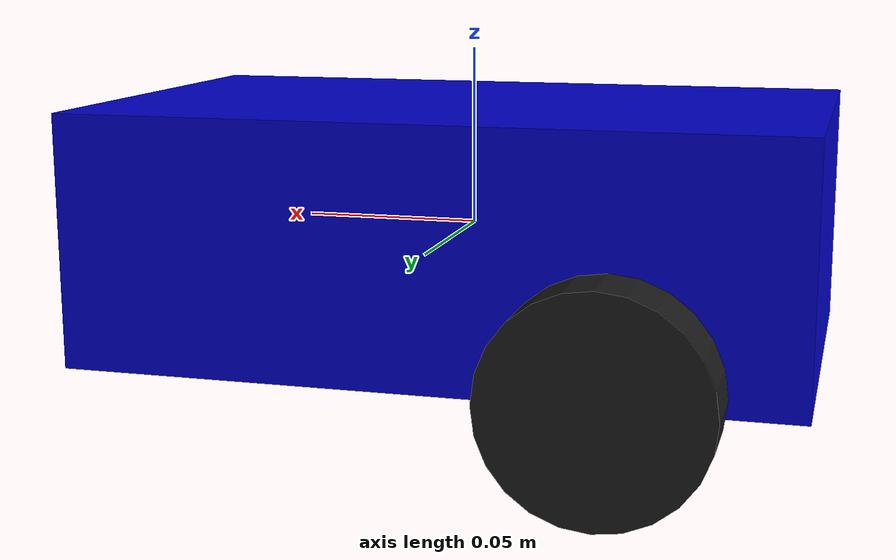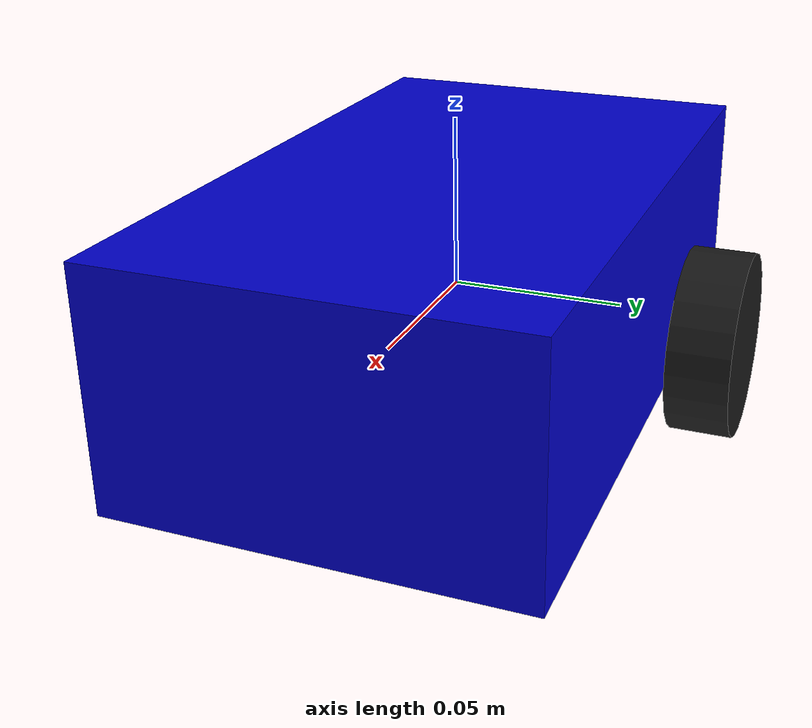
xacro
<?xml version="1.0"?>
<robot name="my_car" xmlns:xacro="http://wiki.ros.org/xacro">
  <xacro:arg name="prefix" default=""/>
  <xacro:arg name="robot_ns" default="/"/>
  <xacro:property name="prefix" value="$(arg prefix)"/>
  <xacro:property name="robot_ns" value="$(arg robot_ns)"/>

  <material name="blue"><color rgba="0 0 0.8 1"/></material>
  <material name="black"><color rgba="0.1 0.1 0.1 1"/></material>

  <link name="${prefix}base_link">
    <visual><geometry><box size="0.2 0.12 0.07"/></geometry><material name="blue"/></visual>
    <collision><geometry><box size="0.2 0.12 0.07"/></geometry></collision>
    <inertial><mass value="0.5"/><inertia ixx="0.001" ixy="0" ixz="0" iyy="0.001" iyz="0" izz="0.001"/></inertial>
  </link>

  <link name="${prefix}left_wheel"><visual><geometry><cylinder radius="0.03" length="0.02"/></geometry><material name="black"/></visual></link>
  <joint name="${prefix}left_wheel_joint" type="continuous">
    <parent link="${prefix}base_link"/><child link="${prefix}left_wheel"/><origin xyz="-0.05 0.07 -0.03" rpy="1.5708 0 0"/><axis xyz="0 0 1"/>
  </joint>

  <link name="${prefix}right_wheel"><visual><geometry><cylinder radius="0.03" length="0.02"/></geometry><material name="black"/></visual></link>
  <joint name="${prefix}right_wheel_joint" type="continuous">
    <parent link="${prefix}base_link"/><child link="${prefix}right_wheel"/><origin xyz="-0.05 -0.07 -0.03" rpy="-1.5708 0 0"/><axis xyz="0 0 1"/>
  </joint>

  <link name="${prefix}laser_link"/>
  <joint name="${prefix}laser_joint" type="fixed"><parent link="${prefix}base_link"/><child link="${prefix}laser_link"/><origin xyz="0.08 0 0.02" rpy="0 0 0"/></joint>

  <link name="${prefix}camera_link"/>
  <joint name="${prefix}camera_joint" type="fixed"><parent link="${prefix}base_link"/><child link="${prefix}camera_link"/><origin xyz="0.06 0 0.03" rpy="0 0 0"/></joint>

  <link name="${prefix}kinect_link"/>
  <joint name="${prefix}kinect_joint" type="fixed"><parent link="${prefix}base_link"/><child link="${prefix}kinect_link"/><origin xyz="0.03 0 0.04" rpy="0 0 0"/></joint>

  <gazebo>
    <plugin name="${prefix}planar_move" filename="libgazebo_ros_planar_move.so">
      <robotNamespace>${robot_ns}</robotNamespace>
      <commandTopic>cmd_vel</commandTopic>
      <odometryTopic>odom</odometryTopic>
      <odometryFrame>${prefix}odom</odometryFrame>
      <robotBaseFrame>${prefix}base_link</robotBaseFrame>
      <publishTF>true</publishTF>
      <updateRate>50.0</updateRate>
    </plugin>
  </gazebo>

  <gazebo reference="${prefix}laser_link">
    <sensor type="ray" name="${prefix}laser_sensor">
      <ray><scan><horizontal><samples>360</samples><min_angle>-3.14</min_angle><max_angle>3.14</max_angle></horizontal></scan><range><min>0.12</min><max>8.0</max></range></ray>
      <plugin name="${prefix}laser_plugin" filename="libgazebo_ros_laser.so">
        <robotNamespace>${robot_ns}</robotNamespace>
        <topicName>scan</topicName>
        <frameName>${prefix}base_link</frameName>
      </plugin>
    </sensor>
  </gazebo>

  <gazebo reference="${prefix}camera_link">
    <sensor type="camera" name="${prefix}camera_sensor">
      <camera><image><width>640</width><height>480</height><format>R8G8B8</format></image></camera>
      <plugin name="${prefix}camera_plugin" filename="libgazebo_ros_camera.so">
        <robotNamespace>${robot_ns}</robotNamespace>
        <cameraName>camera</cameraName>
        <imageTopicName>image_raw</imageTopicName>
        <cameraInfoTopicName>camera_info</cameraInfoTopicName>
        <frameName>${prefix}base_link</frameName>
      </plugin>
    </sensor>
  </gazebo>

  <gazebo reference="${prefix}kinect_link">
    <sensor type="depth" name="${prefix}kinect_sensor">
      <camera><image><width>640</width><height>480</height><format>R8G8B8</format></image></camera>
      <plugin name="${prefix}kinect_plugin" filename="libgazebo_ros_openni_kinect.so">
        <robotNamespace>${robot_ns}</robotNamespace>
        <cameraName>kinect</cameraName>
        <imageTopicName>rgb/image_raw</imageTopicName>
        <depthImageTopicName>depth/image_raw</depthImageTopicName>
        <pointCloudTopicName>depth/points</pointCloudTopicName>
        <frameName>${prefix}base_link</frameName>
      </plugin>
    </sensor>
  </gazebo>
</robot>
